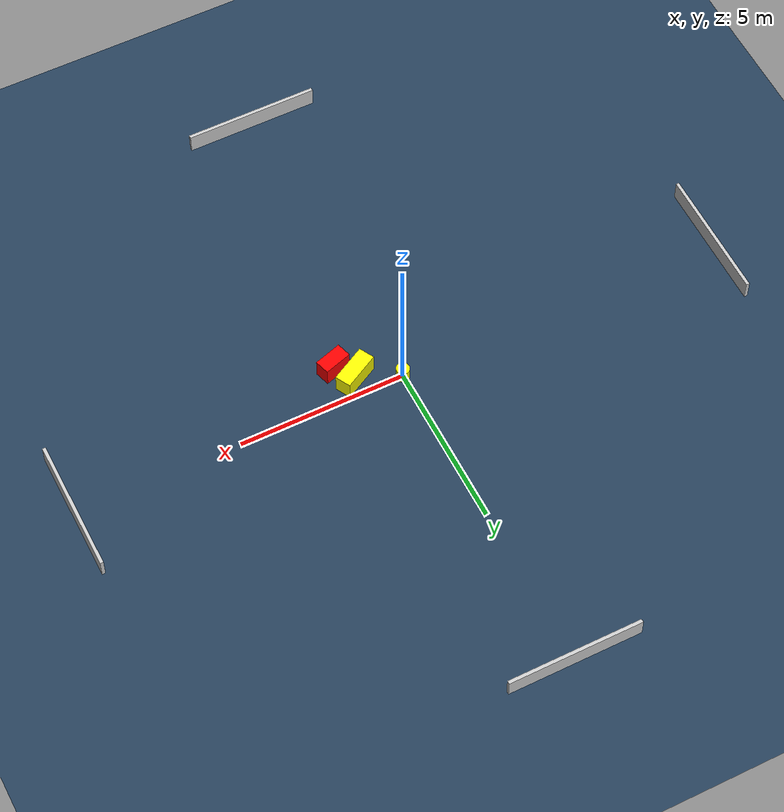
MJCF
<?xml version="1.0" ?>
<mujoco model="generated_environment">
  <option timestep="0.01" integrator="RK4" cone="elliptic"/>
  <default>
    <geom density="1"/>
  </default>
  <asset>
    <texture builtin="gradient" height="3072" name="skybox" rgb1="0.3 0.5 0.7" rgb2="0 0 0" type="skybox" width="512"/>
    <texture builtin="checker" height="300" name="groundplane" rgb1="0.2 0.3 0.4" rgb2="0.1 0.2 0.3" type="2d" width="300"/>
    <material name="groundplane" reflectance="0.2" texrepeat="5 5" texture="groundplane"/>
  </asset>
  <worldbody>
    <light dir="0 0 -1" directional="true" pos="0 0 1.5"/>
    <geom condim="3" friction="0.5 0.005 0.001" material="groundplane" name="floor" pos="0 0 0" size="0 0 0.05" type="plane"/>
    <body name="walls">
      <geom name="wall_1" condim="4" pos="-10.0 0.0 0.3" rgba="0.800000011920929 0.800000011920929 0.800000011920929 1.0" size="0.05 2.0 0.3" type="box"/>
      <geom name="wall_2" condim="4" pos="10.0 0.0 0.3" rgba="0.800000011920929 0.800000011920929 0.800000011920929 1.0" size="0.05 2.0 0.3" type="box"/>
      <geom name="wall_3" condim="4" pos="0.0 -10.0 0.3" rgba="0.800000011920929 0.800000011920929 0.800000011920929 1.0" size="2.0 0.05 0.3" type="box"/>
      <geom name="wall_4" condim="4" pos="0.0 10.0 0.3" rgba="0.800000011920929 0.800000011920929 0.800000011920929 1.0" size="2.0 0.05 0.3" type="box"/>
    </body>
    <body name="robot">
      <joint name="joint_x" type="slide" pos="0 0 0" axis="1 0 0"/>
      <joint name="joint_y" type="slide" pos="0 0 0" axis="0 1 0"/>
      <geom name="robot" type="cylinder" pos="0.0 0.0 0.2" size="0.2 0.2 0.0" mass="5.0" friction="1.0 0.005 0.0001" condim="4" rgba="1.0 1.0 0.0 1.0"/>
    </body>
    <body name="obstacle_1_movable">
      <geom name="obstacle_1_movable" condim="4" pos="1.239307435893297 -0.5304514000223383 0.3" euler="0 0 28.403154932869995" friction="0.0 0.005 0.001" rgba="1.0 1.0 0.0 1.0" size="0.5820184253798036 0.24192687913866737 0.3" type="box" mass="0.1"/>
      <joint type="free"/>
    </body>
    <body name="obstacle_2_static">
      <geom name="obstacle_2_static" condim="4" pos="1.6557494758423859 -1.06301925416736 0.3" euler="0 0 287.28646788958014" friction="0.0 0.005 0.001" rgba="1.0 0.0 0.0 1.0" size="0.22400857306841848 0.4256990072424546 0.3" type="box"/>
    </body>
  </worldbody>
  <actuator>
    <motor name="actuator_x" joint="joint_x" gear="1" ctrlrange="-1 1"/>
    <motor name="actuator_y" joint="joint_y" gear="1" ctrlrange="-1 1"/>
  </actuator>
</mujoco>
